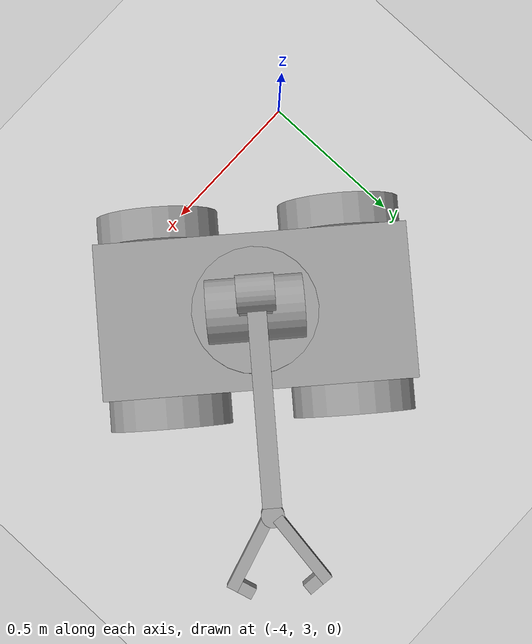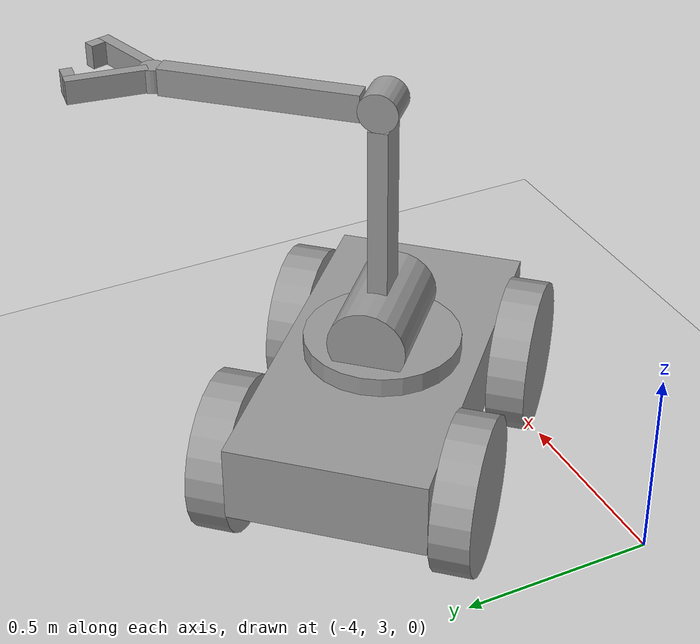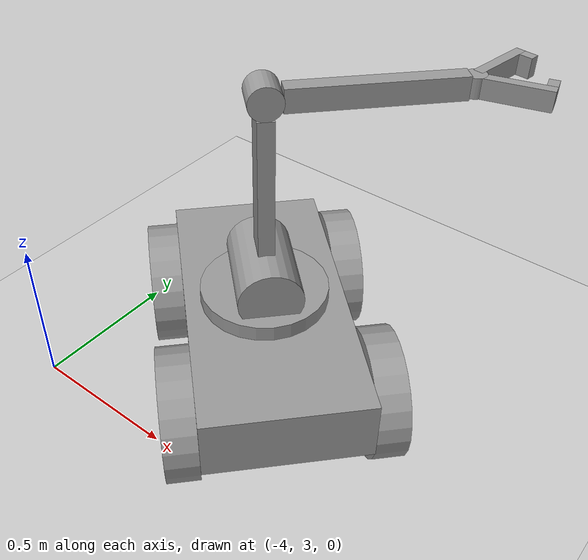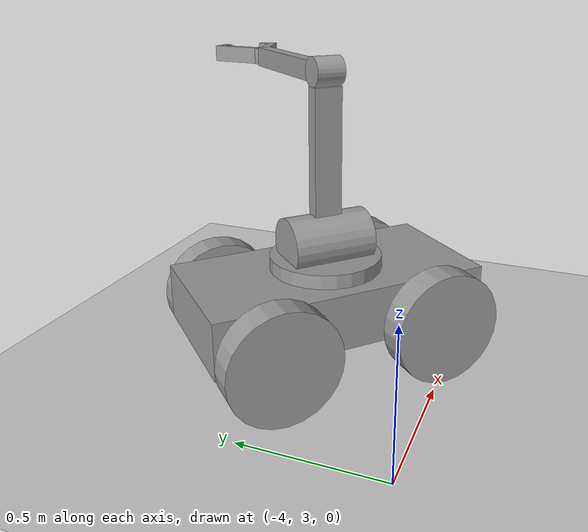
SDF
<sdf version="1.6">
 <world name="default">
  <model name="ground_plane">
   <static>1</static>
   <link name="link">
    <collision name="collision">
     <geometry><plane><normal>0 0 1</normal><size>100 100</size></plane></geometry>
     <surface><friction><ode><mu>100</mu><mu2>50</mu2></ode></friction></surface>
    </collision>
    <visual name="visual">
     <cast_shadows>0</cast_shadows>
     <geometry><plane><normal>0 0 1</normal><size>100 100</size></plane></geometry>
     <material>
      <script><uri>file://media/materials/scripts/gazebo.material</uri><name>Gazebo/Grey</name></script>
     </material>
    </visual>
   </link>
  </model>
  <model name="SimpleRobot">
   <link name="link_0">
    <pose>0.29527 -0.23469 0.458333 0 -0 0</pose>
    <inertial>
     <mass>10</mass>
     <inertia>
      <ixx>0.166667</ixx>
      <ixy>0</ixy>
      <ixz>0</ixz>
      <iyy>0.166667</iyy>
      <iyz>0</iyz>
      <izz>0.166667</izz>
     </inertia>
    </inertial>
    <visual name="visual">
     <geometry><box><size>0.5 1 0.2</size></box></geometry>
     <material>
      <lighting>1</lighting>
      <script><uri>file://media/materials/scripts/gazebo.material</uri><name>Gazebo/Grey</name></script>
      <ambient>0.3 0.3 0.3 1</ambient>
      <diffuse>0.7 0.7 0.7 1</diffuse>
      <specular>0.01 0.01 0.01 1</specular>
      <emissive>0 0 0 1</emissive>
      <shader type="vertex"><normal_map>__default__</normal_map></shader>
     </material>
    </visual>
    <collision name="collision">
     <geometry><box><size>0.5 1 0.2</size></box></geometry>
     <surface>
      <friction>
       <ode><mu>1</mu><mu2>1</mu2><fdir1>0 0 0</fdir1><slip1>0</slip1><slip2>0</slip2></ode>
       <torsional>
        <coefficient>1</coefficient>
        <patch_radius>0</patch_radius>
        <surface_radius>0</surface_radius>
        <use_patch_radius>1</use_patch_radius>
        <ode><slip>0</slip></ode>
       </torsional>
      </friction>
      <bounce><restitution_coefficient>0</restitution_coefficient><threshold>1e+06</threshold></bounce>
      <contact>
       <collide_without_contact>0</collide_without_contact>
       <collide_without_contact_bitmask>1</collide_without_contact_bitmask>
       <collide_bitmask>1</collide_bitmask>
       <ode>
        <soft_cfm>0</soft_cfm>
        <soft_erp>0.2</soft_erp>
        <kp>1e+13</kp>
        <kd>1</kd>
        <max_vel>0.01</max_vel>
        <min_depth>0</min_depth>
       </ode>
       <bullet>
        <split_impulse>1</split_impulse>
        <split_impulse_penetration_threshold>-0.01</split_impulse_penetration_threshold>
        <soft_cfm>0</soft_cfm>
        <soft_erp>0.2</soft_erp>
        <kp>1e+13</kp>
        <kd>1</kd>
       </bullet>
      </contact>
     </surface>
    </collision>
   </link>
   <link name="link_0_0">
    <pose>0.29527 -0.23469 0.658347 0 -0 0</pose>
    <inertial>
     <mass>1</mass>
     <inertia><ixx>0.145833</ixx><ixy>0</ixy><ixz>0</ixz><iyy>0.145833</iyy><iyz>0</iyz><izz>0.125</izz></inertia>
    </inertial>
    <visual name="visual">
     <pose>0 0 0 1.5707 -0 0</pose>
     <geometry><cylinder><radius>0.1</radius><length>0.3</length></cylinder></geometry>
     <material>
      <lighting>1</lighting>
      <script><uri>file://media/materials/scripts/gazebo.material</uri><name>Gazebo/Grey</name></script>
      <ambient>0.3 0.3 0.3 1</ambient>
      <diffuse>0.7 0.7 0.7 1</diffuse>
      <specular>0.01 0.01 0.01 1</specular>
      <emissive>0 0 0 1</emissive>
      <shader type="vertex"><normal_map>__default__</normal_map></shader>
     </material>
    </visual>
    <collision name="collision">
     <pose>0 0 0 1.5707 -0 0</pose>
     <geometry><cylinder><radius>0.1</radius><length>0.3</length></cylinder></geometry>
     <surface>
      <friction>
       <ode><mu>1</mu><mu2>1</mu2><fdir1>0 0 0</fdir1><slip1>0</slip1><slip2>0</slip2></ode>
       <torsional>
        <coefficient>1</coefficient>
        <patch_radius>0</patch_radius>
        <surface_radius>0</surface_radius>
        <use_patch_radius>1</use_patch_radius>
        <ode><slip>0</slip></ode>
       </torsional>
      </friction>
      <bounce><restitution_coefficient>0</restitution_coefficient><threshold>1e+06</threshold></bounce>
      <contact>
       <collide_without_contact>0</collide_without_contact>
       <collide_without_contact_bitmask>1</collide_without_contact_bitmask>
       <collide_bitmask>1</collide_bitmask>
       <ode>
        <soft_cfm>0</soft_cfm>
        <soft_erp>0.2</soft_erp>
        <kp>1e+13</kp>
        <kd>1</kd>
        <max_vel>0.01</max_vel>
        <min_depth>0</min_depth>
       </ode>
       <bullet>
        <split_impulse>1</split_impulse>
        <split_impulse_penetration_threshold>-0.01</split_impulse_penetration_threshold>
        <soft_cfm>0</soft_cfm>
        <soft_erp>0.2</soft_erp>
        <kp>1e+13</kp>
        <kd>1</kd>
       </bullet>
      </contact>
     </surface>
    </collision>
   </link>
   <link name="link_0_0_clone">
    <pose>0.29527 -0.23469 1.24743 0 -0 0</pose>
    <inertial>
     <mass>1</mass>
     <inertia><ixx>0.145833</ixx><ixy>0</ixy><ixz>0</ixz><iyy>0.145833</iyy><iyz>0</iyz><izz>0.125</izz></inertia>
    </inertial>
    <visual name="visual_0">
     <pose>0 0 0 1.5707 -0 0</pose>
     <geometry><cylinder><radius>0.05</radius><length>0.1</length></cylinder></geometry>
     <material>
      <lighting>1</lighting>
      <script><uri>file://media/materials/scripts/gazebo.material</uri><name>Gazebo/Grey</name></script>
      <ambient>0.3 0.3 0.3 1</ambient>
      <diffuse>0.7 0.7 0.7 1</diffuse>
      <specular>0.01 0.01 0.01 1</specular>
      <emissive>0 0 0 1</emissive>
      <shader type="vertex"><normal_map>__default__</normal_map></shader>
     </material>
    </visual>
    <collision name="collision">
     <pose>0 0 0 1.5707 -0 0</pose>
     <geometry><cylinder><radius>0.05</radius><length>0.1</length></cylinder></geometry>
     <surface>
      <friction>
       <ode><mu>1</mu><mu2>1</mu2><fdir1>0 0 0</fdir1><slip1>0</slip1><slip2>0</slip2></ode>
       <torsional>
        <coefficient>1</coefficient>
        <patch_radius>0</patch_radius>
        <surface_radius>0</surface_radius>
        <use_patch_radius>1</use_patch_radius>
        <ode><slip>0</slip></ode>
       </torsional>
      </friction>
      <bounce><restitution_coefficient>0</restitution_coefficient><threshold>1e+06</threshold></bounce>
      <contact>
       <collide_without_contact>0</collide_without_contact>
       <collide_without_contact_bitmask>1</collide_without_contact_bitmask>
       <collide_bitmask>1</collide_bitmask>
       <ode>
        <soft_cfm>0</soft_cfm>
        <soft_erp>0.2</soft_erp>
        <kp>1e+13</kp>
        <kd>1</kd>
        <max_vel>0.01</max_vel>
        <min_depth>0</min_depth>
       </ode>
       <bullet>
        <split_impulse>1</split_impulse>
        <split_impulse_penetration_threshold>-0.01</split_impulse_penetration_threshold>
        <soft_cfm>0</soft_cfm>
        <soft_erp>0.2</soft_erp>
        <kp>1e+13</kp>
        <kd>1</kd>
       </bullet>
      </contact>
     </surface>
    </collision>
   </link>
   <link name="link_0_1">
    <pose>0.86527 -0.23469 1.23978 -1e-05 -7e-06 -0.554613</pose>
    <inertial>
     <mass>1</mass>
     <inertia><ixx>0.145833</ixx><ixy>0</ixy><ixz>0</ixz><iyy>0.145833</iyy><iyz>0</iyz><izz>0.125</izz></inertia>
    </inertial>
    <visual name="visual">
     <geometry><cylinder><radius>0.03</radius><length>0.06</length></cylinder></geometry>
     <material>
      <lighting>1</lighting>
      <script><uri>file://media/materials/scripts/gazebo.material</uri><name>Gazebo/Grey</name></script>
      <ambient>0.3 0.3 0.3 1</ambient>
      <diffuse>0.7 0.7 0.7 1</diffuse>
      <specular>0.01 0.01 0.01 1</specular>
      <emissive>0 0 0 1</emissive>
      <shader type="vertex"><normal_map>__default__</normal_map></shader>
     </material>
    </visual>
    <collision name="collision">
     <geometry><cylinder><radius>0.03</radius><length>0.06</length></cylinder></geometry>
     <surface>
      <friction>
       <ode><mu>1</mu><mu2>1</mu2><fdir1>0 0 0</fdir1><slip1>0</slip1><slip2>0</slip2></ode>
       <torsional>
        <coefficient>1</coefficient>
        <patch_radius>0</patch_radius>
        <surface_radius>0</surface_radius>
        <use_patch_radius>1</use_patch_radius>
        <ode><slip>0</slip></ode>
       </torsional>
      </friction>
      <bounce><restitution_coefficient>0</restitution_coefficient><threshold>1e+06</threshold></bounce>
      <contact>
       <collide_without_contact>0</collide_without_contact>
       <collide_without_contact_bitmask>1</collide_without_contact_bitmask>
       <collide_bitmask>1</collide_bitmask>
       <ode>
        <soft_cfm>0</soft_cfm>
        <soft_erp>0.2</soft_erp>
        <kp>1e+13</kp>
        <kd>1</kd>
        <max_vel>0.01</max_vel>
        <min_depth>0</min_depth>
       </ode>
       <bullet>
        <split_impulse>1</split_impulse>
        <split_impulse_penetration_threshold>-0.01</split_impulse_penetration_threshold>
        <soft_cfm>0</soft_cfm>
        <soft_erp>0.2</soft_erp>
        <kp>1e+13</kp>
        <kd>1</kd>
       </bullet>
      </contact>
     </surface>
    </collision>
   </link>
   <link name="link_1">
    <pose>0.29527 -0.23469 0.583333 0 -0 0</pose>
    <inertial>
     <mass>1</mass>
     <inertia><ixx>0.145833</ixx><ixy>0</ixy><ixz>0</ixz><iyy>0.145833</iyy><iyz>0</iyz><izz>0.125</izz></inertia>
    </inertial>
    <visual name="visual">
     <geometry><cylinder><radius>0.2</radius><length>0.05</length></cylinder></geometry>
     <material>
      <lighting>1</lighting>
      <script><uri>file://media/materials/scripts/gazebo.material</uri><name>Gazebo/Grey</name></script>
      <ambient>0.3 0.3 0.3 1</ambient>
      <diffuse>0.7 0.7 0.7 1</diffuse>
      <specular>0.01 0.01 0.01 1</specular>
      <emissive>0 0 0 1</emissive>
      <shader type="vertex"><normal_map>__default__</normal_map></shader>
     </material>
    </visual>
    <collision name="collision">
     <geometry><cylinder><radius>0.2</radius><length>0.05</length></cylinder></geometry>
     <surface>
      <friction>
       <ode><mu>1</mu><mu2>1</mu2><fdir1>0 0 0</fdir1><slip1>0</slip1><slip2>0</slip2></ode>
       <torsional>
        <coefficient>1</coefficient>
        <patch_radius>0</patch_radius>
        <surface_radius>0</surface_radius>
        <use_patch_radius>1</use_patch_radius>
        <ode><slip>0</slip></ode>
       </torsional>
      </friction>
      <bounce><restitution_coefficient>0</restitution_coefficient><threshold>1e+06</threshold></bounce>
      <contact>
       <collide_without_contact>0</collide_without_contact>
       <collide_without_contact_bitmask>1</collide_without_contact_bitmask>
       <collide_bitmask>1</collide_bitmask>
       <ode>
        <soft_cfm>0</soft_cfm>
        <soft_erp>0.2</soft_erp>
        <kp>1e+13</kp>
        <kd>1</kd>
        <max_vel>0.01</max_vel>
        <min_depth>0</min_depth>
       </ode>
       <bullet>
        <split_impulse>1</split_impulse>
        <split_impulse_penetration_threshold>-0.01</split_impulse_penetration_threshold>
        <soft_cfm>0</soft_cfm>
        <soft_erp>0.2</soft_erp>
        <kp>1e+13</kp>
        <kd>1</kd>
       </bullet>
      </contact>
     </surface>
    </collision>
   </link>
   <link name="link_1_0">
    <pose>0.29527 -0.23469 0.948333 0 -0 0</pose>
    <inertial>
     <mass>1</mass>
     <inertia>
      <ixx>0.166667</ixx>
      <ixy>0</ixy>
      <ixz>0</ixz>
      <iyy>0.166667</iyy>
      <iyz>0</iyz>
      <izz>0.166667</izz>
     </inertia>
    </inertial>
    <visual name="visual">
     <geometry><box><size>0.05 0.1 0.5</size></box></geometry>
     <material>
      <lighting>1</lighting>
      <script><uri>file://media/materials/scripts/gazebo.material</uri><name>Gazebo/Grey</name></script>
      <ambient>0.3 0.3 0.3 1</ambient>
      <diffuse>0.7 0.7 0.7 1</diffuse>
      <specular>0.01 0.01 0.01 1</specular>
      <emissive>0 0 0 1</emissive>
      <shader type="vertex"><normal_map>__default__</normal_map></shader>
     </material>
    </visual>
    <collision name="collision">
     <geometry><box><size>0.05 0.1 0.5</size></box></geometry>
     <surface>
      <friction>
       <ode><mu>1</mu><mu2>1</mu2><fdir1>0 0 0</fdir1><slip1>0</slip1><slip2>0</slip2></ode>
       <torsional>
        <coefficient>1</coefficient>
        <patch_radius>0</patch_radius>
        <surface_radius>0</surface_radius>
        <use_patch_radius>1</use_patch_radius>
        <ode><slip>0</slip></ode>
       </torsional>
      </friction>
      <bounce><restitution_coefficient>0</restitution_coefficient><threshold>1e+06</threshold></bounce>
      <contact>
       <collide_without_contact>0</collide_without_contact>
       <collide_without_contact_bitmask>1</collide_without_contact_bitmask>
       <collide_bitmask>1</collide_bitmask>
       <ode>
        <soft_cfm>0</soft_cfm>
        <soft_erp>0.2</soft_erp>
        <kp>1e+13</kp>
        <kd>1</kd>
        <max_vel>0.01</max_vel>
        <min_depth>0</min_depth>
       </ode>
       <bullet>
        <split_impulse>1</split_impulse>
        <split_impulse_penetration_threshold>-0.01</split_impulse_penetration_threshold>
        <soft_cfm>0</soft_cfm>
        <soft_erp>0.2</soft_erp>
        <kp>1e+13</kp>
        <kd>1</kd>
       </bullet>
      </contact>
     </surface>
    </collision>
   </link>
   <link name="link_1_0_clone">
    <pose>-0.00477 0.065305 0.398328 0 -0 0</pose>
    <inertial>
     <mass>1</mass>
     <inertia><ixx>0.145833</ixx><ixy>0</ixy><ixz>0</ixz><iyy>0.145833</iyy><iyz>0</iyz><izz>0.125</izz></inertia>
    </inertial>
    <visual name="visual">
     <pose>0 0 0 1.5707 0 1.5707</pose>
     <geometry><cylinder><radius>0.2</radius><length>0.1</length></cylinder></geometry>
     <material>
      <lighting>1</lighting>
      <script><uri>file://media/materials/scripts/gazebo.material</uri><name>Gazebo/Grey</name></script>
      <ambient>0.3 0.3 0.3 1</ambient>
      <diffuse>0.7 0.7 0.7 1</diffuse>
      <specular>0.01 0.01 0.01 1</specular>
      <emissive>0 0 0 1</emissive>
      <shader type="vertex"><normal_map>__default__</normal_map></shader>
     </material>
    </visual>
    <collision name="collision">
     <pose>0 0 0 1.5707 0 1.5707</pose>
     <geometry><cylinder><radius>0.2</radius><length>0.1</length></cylinder></geometry>
     <surface>
      <friction>
       <ode><mu>1</mu><mu2>1</mu2><fdir1>0 0 0</fdir1><slip1>0</slip1><slip2>0</slip2></ode>
       <torsional>
        <coefficient>1</coefficient>
        <patch_radius>0</patch_radius>
        <surface_radius>0</surface_radius>
        <use_patch_radius>1</use_patch_radius>
        <ode><slip>0</slip></ode>
       </torsional>
      </friction>
      <bounce><restitution_coefficient>0</restitution_coefficient><threshold>1e+06</threshold></bounce>
      <contact>
       <collide_without_contact>0</collide_without_contact>
       <collide_without_contact_bitmask>1</collide_without_contact_bitmask>
       <collide_bitmask>1</collide_bitmask>
       <ode>
        <soft_cfm>0</soft_cfm>
        <soft_erp>0.2</soft_erp>
        <kp>1e+13</kp>
        <kd>1</kd>
        <max_vel>0.01</max_vel>
        <min_depth>0</min_depth>
       </ode>
       <bullet>
        <split_impulse>1</split_impulse>
        <split_impulse_penetration_threshold>-0.01</split_impulse_penetration_threshold>
        <soft_cfm>0</soft_cfm>
        <soft_erp>0.2</soft_erp>
        <kp>1e+13</kp>
        <kd>1</kd>
       </bullet>
      </contact>
     </surface>
    </collision>
   </link>
   <link name="link_1_0_clone_0">
    <pose>0.59531 0.065305 0.398328 0 -0 0</pose>
    <inertial>
     <mass>1</mass>
     <inertia><ixx>0.145833</ixx><ixy>0</ixy><ixz>0</ixz><iyy>0.145833</iyy><iyz>0</iyz><izz>0.125</izz></inertia>
    </inertial>
    <visual name="visual">
     <pose>0 0 0 1.5707 0 1.5707</pose>
     <geometry><cylinder><radius>0.2</radius><length>0.1</length></cylinder></geometry>
     <material>
      <lighting>1</lighting>
      <script><uri>file://media/materials/scripts/gazebo.material</uri><name>Gazebo/Grey</name></script>
      <ambient>0.3 0.3 0.3 1</ambient>
      <diffuse>0.7 0.7 0.7 1</diffuse>
      <specular>0.01 0.01 0.01 1</specular>
      <emissive>0 0 0 1</emissive>
      <shader type="vertex"><normal_map>__default__</normal_map></shader>
     </material>
    </visual>
    <collision name="collision">
     <pose>0 0 0 1.5707 0 1.5707</pose>
     <geometry><cylinder><radius>0.2</radius><length>0.1</length></cylinder></geometry>
     <surface>
      <friction>
       <ode><mu>1</mu><mu2>1</mu2><fdir1>0 0 0</fdir1><slip1>0</slip1><slip2>0</slip2></ode>
       <torsional>
        <coefficient>1</coefficient>
        <patch_radius>0</patch_radius>
        <surface_radius>0</surface_radius>
        <use_patch_radius>1</use_patch_radius>
        <ode><slip>0</slip></ode>
       </torsional>
      </friction>
      <bounce><restitution_coefficient>0</restitution_coefficient><threshold>1e+06</threshold></bounce>
      <contact>
       <collide_without_contact>0</collide_without_contact>
       <collide_without_contact_bitmask>1</collide_without_contact_bitmask>
       <collide_bitmask>1</collide_bitmask>
       <ode>
        <soft_cfm>0</soft_cfm>
        <soft_erp>0.2</soft_erp>
        <kp>1e+13</kp>
        <kd>1</kd>
        <max_vel>0.01</max_vel>
        <min_depth>0</min_depth>
       </ode>
       <bullet>
        <split_impulse>1</split_impulse>
        <split_impulse_penetration_threshold>-0.01</split_impulse_penetration_threshold>
        <soft_cfm>0</soft_cfm>
        <soft_erp>0.2</soft_erp>
        <kp>1e+13</kp>
        <kd>1</kd>
       </bullet>
      </contact>
     </surface>
    </collision>
   </link>
   <link name="link_1_0_clone_1">
    <pose>0.59531 -0.534685 0.398328 0 -0 0</pose>
    <inertial>
     <mass>1</mass>
     <inertia><ixx>0.145833</ixx><ixy>0</ixy><ixz>0</ixz><iyy>0.145833</iyy><iyz>0</iyz><izz>0.125</izz></inertia>
    </inertial>
    <visual name="visual">
     <pose>0 0 0 1.5707 0 1.5707</pose>
     <geometry><cylinder><radius>0.2</radius><length>0.1</length></cylinder></geometry>
     <material>
      <lighting>1</lighting>
      <script><uri>file://media/materials/scripts/gazebo.material</uri><name>Gazebo/Grey</name></script>
      <ambient>0.3 0.3 0.3 1</ambient>
      <diffuse>0.7 0.7 0.7 1</diffuse>
      <specular>0.01 0.01 0.01 1</specular>
      <emissive>0 0 0 1</emissive>
      <shader type="vertex"><normal_map>__default__</normal_map></shader>
     </material>
    </visual>
    <collision name="collision">
     <pose>0 0 0 1.5707 0 1.5707</pose>
     <geometry><cylinder><radius>0.2</radius><length>0.1</length></cylinder></geometry>
     <surface>
      <friction>
       <ode><mu>1</mu><mu2>1</mu2><fdir1>0 0 0</fdir1><slip1>0</slip1><slip2>0</slip2></ode>
       <torsional>
        <coefficient>1</coefficient>
        <patch_radius>0</patch_radius>
        <surface_radius>0</surface_radius>
        <use_patch_radius>1</use_patch_radius>
        <ode><slip>0</slip></ode>
       </torsional>
      </friction>
      <bounce><restitution_coefficient>0</restitution_coefficient><threshold>1e+06</threshold></bounce>
      <contact>
       <collide_without_contact>0</collide_without_contact>
       <collide_without_contact_bitmask>1</collide_without_contact_bitmask>
       <collide_bitmask>1</collide_bitmask>
       <ode>
        <soft_cfm>0</soft_cfm>
        <soft_erp>0.2</soft_erp>
        <kp>1e+13</kp>
        <kd>1</kd>
        <max_vel>0.01</max_vel>
        <min_depth>0</min_depth>
       </ode>
       <bullet>
        <split_impulse>1</split_impulse>
        <split_impulse_penetration_threshold>-0.01</split_impulse_penetration_threshold>
        <soft_cfm>0</soft_cfm>
        <soft_erp>0.2</soft_erp>
        <kp>1e+13</kp>
        <kd>1</kd>
       </bullet>
      </contact>
     </surface>
    </collision>
   </link>
   <link name="link_1_0_clone_1_clone">
    <pose>-0.00477 -0.534685 0.398328 0 -0 0</pose>
    <inertial>
     <mass>1</mass>
     <inertia><ixx>0.145833</ixx><ixy>0</ixy><ixz>0</ixz><iyy>0.145833</iyy><iyz>0</iyz><izz>0.125</izz></inertia>
    </inertial>
    <visual name="visual">
     <pose>0 0 0 1.5707 0 1.5707</pose>
     <geometry><cylinder><radius>0.2</radius><length>0.1</length></cylinder></geometry>
     <material>
      <lighting>1</lighting>
      <script><uri>file://media/materials/scripts/gazebo.material</uri><name>Gazebo/Grey</name></script>
      <ambient>0.3 0.3 0.3 1</ambient>
      <diffuse>0.7 0.7 0.7 1</diffuse>
      <specular>0.01 0.01 0.01 1</specular>
      <emissive>0 0 0 1</emissive>
      <shader type="vertex"><normal_map>__default__</normal_map></shader>
     </material>
    </visual>
    <collision name="collision">
     <pose>0 0 0 1.5707 0 1.5707</pose>
     <geometry><cylinder><radius>0.2</radius><length>0.1</length></cylinder></geometry>
     <surface>
      <friction>
       <ode><mu>1</mu><mu2>1</mu2><fdir1>0 0 0</fdir1><slip1>0</slip1><slip2>0</slip2></ode>
       <torsional>
        <coefficient>1</coefficient>
        <patch_radius>0</patch_radius>
        <surface_radius>0</surface_radius>
        <use_patch_radius>1</use_patch_radius>
        <ode><slip>0</slip></ode>
       </torsional>
      </friction>
      <bounce><restitution_coefficient>0</restitution_coefficient><threshold>1e+06</threshold></bounce>
      <contact>
       <collide_without_contact>0</collide_without_contact>
       <collide_without_contact_bitmask>1</collide_without_contact_bitmask>
       <collide_bitmask>1</collide_bitmask>
       <ode>
        <soft_cfm>0</soft_cfm>
        <soft_erp>0.2</soft_erp>
        <kp>1e+13</kp>
        <kd>1</kd>
        <max_vel>0.01</max_vel>
        <min_depth>0</min_depth>
       </ode>
       <bullet>
        <split_impulse>1</split_impulse>
        <split_impulse_penetration_threshold>-0.01</split_impulse_penetration_threshold>
        <soft_cfm>0</soft_cfm>
        <soft_erp>0.2</soft_erp>
        <kp>1e+13</kp>
        <kd>1</kd>
       </bullet>
      </contact>
     </surface>
    </collision>
   </link>
   <link name="link_1_0_clone_2">
    <pose>0.59527 -0.23469 1.23978 0 -0 0</pose>
    <inertial>
     <mass>1</mass>
     <inertia>
      <ixx>0.166667</ixx>
      <ixy>0</ixy>
      <ixz>0</ixz>
      <iyy>0.166667</iyy>
      <iyz>0</iyz>
      <izz>0.166667</izz>
     </inertia>
    </inertial>
    <visual name="visual_0">
     <pose>0 0 0 0 1.5707 0</pose>
     <geometry><box><size>0.07 0.05 0.5</size></box></geometry>
     <material>
      <lighting>1</lighting>
      <script><uri>file://media/materials/scripts/gazebo.material</uri><name>Gazebo/Grey</name></script>
      <ambient>0.3 0.3 0.3 1</ambient>
      <diffuse>0.7 0.7 0.7 1</diffuse>
      <specular>0.01 0.01 0.01 1</specular>
      <emissive>0 0 0 1</emissive>
      <shader type="vertex"><normal_map>__default__</normal_map></shader>
     </material>
    </visual>
    <collision name="collision">
     <pose>0 0 0 0 1.5707 0</pose>
     <geometry><box><size>0.07 0.05 0.5</size></box></geometry>
     <surface>
      <friction>
       <ode><mu>1</mu><mu2>1</mu2><fdir1>0 0 0</fdir1><slip1>0</slip1><slip2>0</slip2></ode>
       <torsional>
        <coefficient>1</coefficient>
        <patch_radius>0</patch_radius>
        <surface_radius>0</surface_radius>
        <use_patch_radius>1</use_patch_radius>
        <ode><slip>0</slip></ode>
       </torsional>
      </friction>
      <bounce><restitution_coefficient>0</restitution_coefficient><threshold>1e+06</threshold></bounce>
      <contact>
       <collide_without_contact>0</collide_without_contact>
       <collide_without_contact_bitmask>1</collide_without_contact_bitmask>
       <collide_bitmask>1</collide_bitmask>
       <ode>
        <soft_cfm>0</soft_cfm>
        <soft_erp>0.2</soft_erp>
        <kp>1e+13</kp>
        <kd>1</kd>
        <max_vel>0.01</max_vel>
        <min_depth>0</min_depth>
       </ode>
       <bullet>
        <split_impulse>1</split_impulse>
        <split_impulse_penetration_threshold>-0.01</split_impulse_penetration_threshold>
        <soft_cfm>0</soft_cfm>
        <soft_erp>0.2</soft_erp>
        <kp>1e+13</kp>
        <kd>1</kd>
       </bullet>
      </contact>
     </surface>
    </collision>
   </link>
   <link name="link_1_1">
    <pose>0.954832 -0.298993 1.23978 -1e-05 -7e-06 -0.554613</pose>
    <inertial>
     <mass>1</mass>
     <inertia>
      <ixx>0.166667</ixx>
      <ixy>0</ixy>
      <ixz>0</ixz>
      <iyy>0.166667</iyy>
      <iyz>0</iyz>
      <izz>0.166667</izz>
     </inertia>
    </inertial>
    <visual name="visual">
     <geometry><box><size>0.2 0.03 0.06</size></box></geometry>
     <material>
      <lighting>1</lighting>
      <script><uri>file://media/materials/scripts/gazebo.material</uri><name>Gazebo/Grey</name></script>
      <ambient>0.3 0.3 0.3 1</ambient>
      <diffuse>0.7 0.7 0.7 1</diffuse>
      <specular>0.01 0.01 0.01 1</specular>
      <emissive>0 0 0 1</emissive>
      <shader type="vertex"><normal_map>__default__</normal_map></shader>
     </material>
    </visual>
    <collision name="collision">
     <geometry><box><size>0.2 0.03 0.06</size></box></geometry>
     <surface>
      <friction>
       <ode><mu>1</mu><mu2>1</mu2><fdir1>0 0 0</fdir1><slip1>0</slip1><slip2>0</slip2></ode>
       <torsional>
        <coefficient>1</coefficient>
        <patch_radius>0</patch_radius>
        <surface_radius>0</surface_radius>
        <use_patch_radius>1</use_patch_radius>
        <ode><slip>0</slip></ode>
       </torsional>
      </friction>
      <bounce><restitution_coefficient>0</restitution_coefficient><threshold>1e+06</threshold></bounce>
      <contact>
       <collide_without_contact>0</collide_without_contact>
       <collide_without_contact_bitmask>1</collide_without_contact_bitmask>
       <collide_bitmask>1</collide_bitmask>
       <ode>
        <soft_cfm>0</soft_cfm>
        <soft_erp>0.2</soft_erp>
        <kp>1e+13</kp>
        <kd>1</kd>
        <max_vel>0.01</max_vel>
        <min_depth>0</min_depth>
       </ode>
       <bullet>
        <split_impulse>1</split_impulse>
        <split_impulse_penetration_threshold>-0.01</split_impulse_penetration_threshold>
        <soft_cfm>0</soft_cfm>
        <soft_erp>0.2</soft_erp>
        <kp>1e+13</kp>
        <kd>1</kd>
       </bullet>
      </contact>
     </surface>
    </collision>
   </link>
   <link name="link_1_1_clone">
    <pose>0.954569 -0.166494 1.23978 -1.6e-05 1.7e-05 0.603129</pose>
    <inertial>
     <mass>1</mass>
     <inertia>
      <ixx>0.166667</ixx>
      <ixy>0</ixy>
      <ixz>0</ixz>
      <iyy>0.166667</iyy>
      <iyz>0</iyz>
      <izz>0.166667</izz>
     </inertia>
    </inertial>
    <visual name="visual_0">
     <geometry><box><size>0.2 0.03 0.06</size></box></geometry>
     <material>
      <lighting>1</lighting>
      <script><uri>file://media/materials/scripts/gazebo.material</uri><name>Gazebo/Grey</name></script>
      <ambient>0.3 0.3 0.3 1</ambient>
      <diffuse>0.7 0.7 0.7 1</diffuse>
      <specular>0.01 0.01 0.01 1</specular>
      <emissive>0 0 0 1</emissive>
      <shader type="vertex"><normal_map>__default__</normal_map></shader>
     </material>
    </visual>
    <collision name="collision">
     <geometry><box><size>0.2 0.03 0.06</size></box></geometry>
     <surface>
      <friction>
       <ode><mu>1</mu><mu2>1</mu2><fdir1>0 0 0</fdir1><slip1>0</slip1><slip2>0</slip2></ode>
       <torsional>
        <coefficient>1</coefficient>
        <patch_radius>0</patch_radius>
        <surface_radius>0</surface_radius>
        <use_patch_radius>1</use_patch_radius>
        <ode><slip>0</slip></ode>
       </torsional>
      </friction>
      <bounce><restitution_coefficient>0</restitution_coefficient><threshold>1e+06</threshold></bounce>
      <contact>
       <collide_without_contact>0</collide_without_contact>
       <collide_without_contact_bitmask>1</collide_without_contact_bitmask>
       <collide_bitmask>1</collide_bitmask>
       <ode>
        <soft_cfm>0</soft_cfm>
        <soft_erp>0.2</soft_erp>
        <kp>1e+13</kp>
        <kd>1</kd>
        <max_vel>0.01</max_vel>
        <min_depth>0</min_depth>
       </ode>
       <bullet>
        <split_impulse>1</split_impulse>
        <split_impulse_penetration_threshold>-0.01</split_impulse_penetration_threshold>
        <soft_cfm>0</soft_cfm>
        <soft_erp>0.2</soft_erp>
        <kp>1e+13</kp>
        <kd>1</kd>
       </bullet>
      </contact>
     </surface>
    </collision>
   </link>
   <link name="link_1_1_clone_clone">
    <pose>1.04426 -0.146801 1.23978 -6e-06 1e-06 -0.947743</pose>
    <inertial>
     <mass>1</mass>
     <inertia>
      <ixx>0.166667</ixx>
      <ixy>0</ixy>
      <ixz>0</ixz>
      <iyy>0.166667</iyy>
      <iyz>0</iyz>
      <izz>0.166667</izz>
     </inertia>
    </inertial>
    <visual name="visual_0">
     <geometry><box><size>0.04 0.03 0.06</size></box></geometry>
     <material>
      <lighting>1</lighting>
      <script><uri>file://media/materials/scripts/gazebo.material</uri><name>Gazebo/Grey</name></script>
      <ambient>0.3 0.3 0.3 1</ambient>
      <diffuse>0.7 0.7 0.7 1</diffuse>
      <specular>0.01 0.01 0.01 1</specular>
      <emissive>0 0 0 1</emissive>
      <shader type="vertex"><normal_map>__default__</normal_map></shader>
     </material>
    </visual>
    <collision name="collision">
     <geometry><box><size>0.04 0.03 0.06</size></box></geometry>
     <surface>
      <friction>
       <ode><mu>1</mu><mu2>1</mu2><fdir1>0 0 0</fdir1><slip1>0</slip1><slip2>0</slip2></ode>
       <torsional>
        <coefficient>1</coefficient>
        <patch_radius>0</patch_radius>
        <surface_radius>0</surface_radius>
        <use_patch_radius>1</use_patch_radius>
        <ode><slip>0</slip></ode>
       </torsional>
      </friction>
      <bounce><restitution_coefficient>0</restitution_coefficient><threshold>1e+06</threshold></bounce>
      <contact>
       <collide_without_contact>0</collide_without_contact>
       <collide_without_contact_bitmask>1</collide_without_contact_bitmask>
       <collide_bitmask>1</collide_bitmask>
       <ode>
        <soft_cfm>0</soft_cfm>
        <soft_erp>0.2</soft_erp>
        <kp>1e+13</kp>
        <kd>1</kd>
        <max_vel>0.01</max_vel>
        <min_depth>0</min_depth>
       </ode>
       <bullet>
        <split_impulse>1</split_impulse>
        <split_impulse_penetration_threshold>-0.01</split_impulse_penetration_threshold>
        <soft_cfm>0</soft_cfm>
        <soft_erp>0.2</soft_erp>
        <kp>1e+13</kp>
        <kd>1</kd>
       </bullet>
      </contact>
     </surface>
    </collision>
   </link>
   <link name="link_1_1_clone_clone_clone">
    <pose>1.04508 -0.314757 1.23978 -1e-05 1.4e-05 -2.12888</pose>
    <inertial>
     <mass>1</mass>
     <inertia>
      <ixx>0.166667</ixx>
      <ixy>0</ixy>
      <ixz>0</ixz>
      <iyy>0.166667</iyy>
      <iyz>0</iyz>
      <izz>0.166667</izz>
     </inertia>
    </inertial>
    <visual name="visual_0">
     <geometry><box><size>0.04 0.03 0.06</size></box></geometry>
     <material>
      <lighting>1</lighting>
      <script><uri>file://media/materials/scripts/gazebo.material</uri><name>Gazebo/Grey</name></script>
      <ambient>0.3 0.3 0.3 1</ambient>
      <diffuse>0.7 0.7 0.7 1</diffuse>
      <specular>0.01 0.01 0.01 1</specular>
      <emissive>0 0 0 1</emissive>
      <shader type="vertex"><normal_map>__default__</normal_map></shader>
     </material>
    </visual>
    <collision name="collision">
     <geometry><box><size>0.04 0.03 0.06</size></box></geometry>
     <surface>
      <friction>
       <ode><mu>1</mu><mu2>1</mu2><fdir1>0 0 0</fdir1><slip1>0</slip1><slip2>0</slip2></ode>
       <torsional>
        <coefficient>1</coefficient>
        <patch_radius>0</patch_radius>
        <surface_radius>0</surface_radius>
        <use_patch_radius>1</use_patch_radius>
        <ode><slip>0</slip></ode>
       </torsional>
      </friction>
      <bounce><restitution_coefficient>0</restitution_coefficient><threshold>1e+06</threshold></bounce>
      <contact>
       <collide_without_contact>0</collide_without_contact>
       <collide_without_contact_bitmask>1</collide_without_contact_bitmask>
       <collide_bitmask>1</collide_bitmask>
       <ode>
        <soft_cfm>0</soft_cfm>
        <soft_erp>0.2</soft_erp>
        <kp>1e+13</kp>
        <kd>1</kd>
        <max_vel>0.01</max_vel>
        <min_depth>0</min_depth>
       </ode>
       <bullet>
        <split_impulse>1</split_impulse>
        <split_impulse_penetration_threshold>-0.01</split_impulse_penetration_threshold>
        <soft_cfm>0</soft_cfm>
        <soft_erp>0.2</soft_erp>
        <kp>1e+13</kp>
        <kd>1</kd>
       </bullet>
      </contact>
     </surface>
    </collision>
   </link>
   <joint name="link_0_0_JOINT_9" type="fixed">
    <parent>link_0_0</parent>
    <child>link_1_0</child>
    <physics>
     <ode><limit><cfm>0</cfm><erp>0.2</erp></limit><suspension><cfm>0</cfm><erp>0.2</erp></suspension></ode>
    </physics>
   </joint>
   <joint name="link_0_0_clone_JOINT_11" type="revolute">
    <parent>link_0_0_clone</parent>
    <child>link_1_0_clone_2</child>
    <axis>
     <xyz>1 0 0</xyz>
     <use_parent_model_frame>0</use_parent_model_frame>
     <limit>
      <lower>-1.79769e+308</lower>
      <upper>1.79769e+308</upper>
      <effort>-1</effort>
      <velocity>-1</velocity>
     </limit>
     <dynamics>
      <spring_reference>0</spring_reference>
      <spring_stiffness>0</spring_stiffness>
      <damping>0</damping>
      <friction>0</friction>
     </dynamics>
    </axis>
    <physics>
     <ode><limit><cfm>0</cfm><erp>0.2</erp></limit><suspension><cfm>0</cfm><erp>0.2</erp></suspension></ode>
    </physics>
   </joint>
   <joint name="link_0_1_JOINT_1" type="revolute">
    <parent>link_0_1</parent>
    <child>link_1_1</child>
    <pose>-0.11 0.01 0 0 -0 0</pose>
    <axis>
     <xyz>0 0 1</xyz>
     <use_parent_model_frame>0</use_parent_model_frame>
     <limit>
      <lower>-1.79769e+308</lower>
      <upper>1.79769e+308</upper>
      <effort>-1</effort>
      <velocity>-1</velocity>
     </limit>
     <dynamics>
      <spring_reference>0</spring_reference>
      <spring_stiffness>0</spring_stiffness>
      <damping>0</damping>
      <friction>0</friction>
     </dynamics>
    </axis>
    <physics>
     <ode><limit><cfm>0</cfm><erp>0.2</erp></limit><suspension><cfm>0</cfm><erp>0.2</erp></suspension></ode>
    </physics>
   </joint>
   <joint name="link_0_1_JOINT_3" type="revolute">
    <parent>link_0_1</parent>
    <child>link_1_1_clone</child>
    <pose>-0.11 -0.005 0 0 -0 0</pose>
    <axis>
     <xyz>0 0 1</xyz>
     <use_parent_model_frame>0</use_parent_model_frame>
     <limit>
      <lower>-1.79769e+308</lower>
      <upper>1.79769e+308</upper>
      <effort>-1</effort>
      <velocity>-1</velocity>
     </limit>
     <dynamics>
      <spring_reference>0</spring_reference>
      <spring_stiffness>0</spring_stiffness>
      <damping>0</damping>
      <friction>0</friction>
     </dynamics>
    </axis>
    <physics>
     <ode><limit><cfm>0</cfm><erp>0.2</erp></limit><suspension><cfm>0</cfm><erp>0.2</erp></suspension></ode>
    </physics>
   </joint>
   <joint name="link_0_JOINT_1" type="revolute">
    <parent>link_0</parent>
    <child>link_1</child>
    <axis>
     <xyz>0 0 1</xyz>
     <use_parent_model_frame>0</use_parent_model_frame>
     <limit>
      <lower>-1.79769e+308</lower>
      <upper>1.79769e+308</upper>
      <effort>-1</effort>
      <velocity>-1</velocity>
     </limit>
     <dynamics>
      <spring_reference>0</spring_reference>
      <spring_stiffness>0</spring_stiffness>
      <damping>0</damping>
      <friction>0</friction>
     </dynamics>
    </axis>
    <physics>
     <ode><limit><cfm>0</cfm><erp>0.2</erp></limit><suspension><cfm>0</cfm><erp>0.2</erp></suspension></ode>
    </physics>
   </joint>
   <joint name="link_0_JOINT_2" type="revolute">
    <parent>link_0</parent>
    <child>link_1_0_clone_0</child>
    <axis>
     <xyz>1 0 0</xyz>
     <use_parent_model_frame>0</use_parent_model_frame>
     <limit>
      <lower>-1.79769e+308</lower>
      <upper>1.79769e+308</upper>
      <effort>-1</effort>
      <velocity>-1</velocity>
     </limit>
     <dynamics>
      <spring_reference>0</spring_reference>
      <spring_stiffness>0</spring_stiffness>
      <damping>0</damping>
      <friction>0</friction>
     </dynamics>
    </axis>
    <physics>
     <ode><limit><cfm>0</cfm><erp>0.2</erp></limit><suspension><cfm>0</cfm><erp>0.2</erp></suspension></ode>
    </physics>
   </joint>
   <joint name="link_0_JOINT_3" type="revolute">
    <parent>link_0</parent>
    <child>link_1_0_clone</child>
    <axis>
     <xyz>1 0 0</xyz>
     <use_parent_model_frame>0</use_parent_model_frame>
     <limit>
      <lower>-1.79769e+308</lower>
      <upper>1.79769e+308</upper>
      <effort>-1</effort>
      <velocity>-1</velocity>
     </limit>
     <dynamics>
      <spring_reference>0</spring_reference>
      <spring_stiffness>0</spring_stiffness>
      <damping>0</damping>
      <friction>0</friction>
     </dynamics>
    </axis>
    <physics>
     <ode><limit><cfm>0</cfm><erp>0.2</erp></limit><suspension><cfm>0</cfm><erp>0.2</erp></suspension></ode>
    </physics>
   </joint>
   <joint name="link_0_JOINT_5" type="revolute">
    <parent>link_0</parent>
    <child>link_1_0_clone_1_clone</child>
    <axis>
     <xyz>1 0 0</xyz>
     <use_parent_model_frame>0</use_parent_model_frame>
     <limit>
      <lower>-1.79769e+308</lower>
      <upper>1.79769e+308</upper>
      <effort>-1</effort>
      <velocity>-1</velocity>
     </limit>
     <dynamics>
      <spring_reference>0</spring_reference>
      <spring_stiffness>0</spring_stiffness>
      <damping>0</damping>
      <friction>0</friction>
     </dynamics>
    </axis>
    <physics>
     <ode><limit><cfm>0</cfm><erp>0.2</erp></limit><suspension><cfm>0</cfm><erp>0.2</erp></suspension></ode>
    </physics>
   </joint>
   <joint name="link_0_JOINT_6" type="revolute">
    <parent>link_0</parent>
    <child>link_1_0_clone_1</child>
    <axis>
     <xyz>1 0 0</xyz>
     <use_parent_model_frame>0</use_parent_model_frame>
     <limit>
      <lower>-1.79769e+308</lower>
      <upper>1.79769e+308</upper>
      <effort>-1</effort>
      <velocity>-1</velocity>
     </limit>
     <dynamics>
      <spring_reference>0</spring_reference>
      <spring_stiffness>0</spring_stiffness>
      <damping>0</damping>
      <friction>0</friction>
     </dynamics>
    </axis>
    <physics>
     <ode><limit><cfm>0</cfm><erp>0.2</erp></limit><suspension><cfm>0</cfm><erp>0.2</erp></suspension></ode>
    </physics>
   </joint>
   <joint name="link_1_0_JOINT_10" type="revolute">
    <parent>link_1_0</parent>
    <child>link_0_0_clone</child>
    <axis>
     <xyz>0 1 0</xyz>
     <use_parent_model_frame>0</use_parent_model_frame>
     <limit>
      <lower>-1.79769e+308</lower>
      <upper>1.79769e+308</upper>
      <effort>-1</effort>
      <velocity>-1</velocity>
     </limit>
     <dynamics>
      <spring_reference>0</spring_reference>
      <spring_stiffness>0</spring_stiffness>
      <damping>0</damping>
      <friction>0</friction>
     </dynamics>
    </axis>
    <physics>
     <ode><limit><cfm>0</cfm><erp>0.2</erp></limit><suspension><cfm>0</cfm><erp>0.2</erp></suspension></ode>
    </physics>
   </joint>
   <joint name="link_1_0_clone_2_JOINT_0" type="fixed">
    <parent>link_1_0_clone_2</parent>
    <child>link_0_1</child>
    <physics>
     <ode><limit><cfm>0</cfm><erp>0.2</erp></limit><suspension><cfm>0</cfm><erp>0.2</erp></suspension></ode>
    </physics>
   </joint>
   <joint name="link_1_1_JOINT_5" type="fixed">
    <parent>link_1_1</parent>
    <child>link_1_1_clone_clone_clone</child>
    <physics>
     <ode><limit><cfm>0</cfm><erp>0.2</erp></limit><suspension><cfm>0</cfm><erp>0.2</erp></suspension></ode>
    </physics>
   </joint>
   <joint name="link_1_1_clone_JOINT_4" type="fixed">
    <parent>link_1_1_clone</parent>
    <child>link_1_1_clone_clone</child>
    <physics>
     <ode><limit><cfm>0</cfm><erp>0.2</erp></limit><suspension><cfm>0</cfm><erp>0.2</erp></suspension></ode>
    </physics>
   </joint>
   <joint name="link_1_JOINT_8" type="revolute">
    <parent>link_1</parent>
    <child>link_0_0</child>
    <axis>
     <xyz>0 1 0</xyz>
     <use_parent_model_frame>0</use_parent_model_frame>
     <limit>
      <lower>-1.79769e+308</lower>
      <upper>1.79769e+308</upper>
      <effort>-1</effort>
      <velocity>-1</velocity>
     </limit>
     <dynamics>
      <spring_reference>0</spring_reference>
      <spring_stiffness>0</spring_stiffness>
      <damping>0</damping>
      <friction>0</friction>
     </dynamics>
    </axis>
    <physics>
     <ode><limit><cfm>0</cfm><erp>0.2</erp></limit><suspension><cfm>0</cfm><erp>0.2</erp></suspension></ode>
    </physics>
   </joint>
   <static>0</static>
   <pose>-3.78439 3.37405 -0.198321 -6e-06 7e-06 0.82445</pose>
  </model>
 </world>
</sdf>
